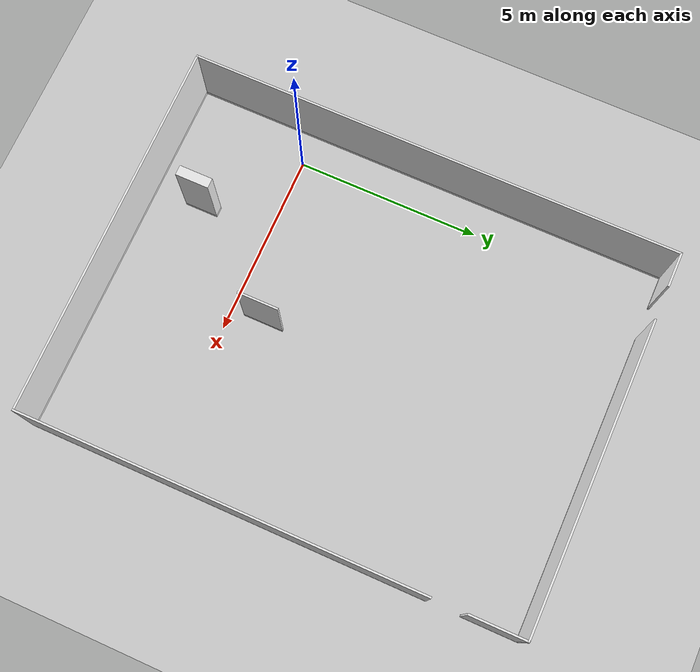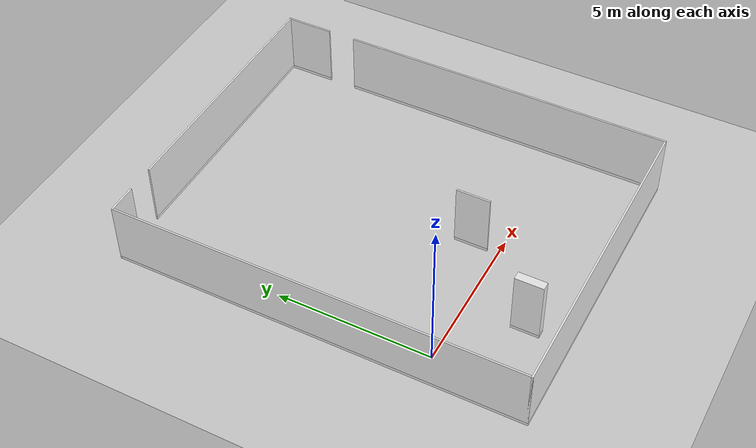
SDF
<sdf version="1.6">
 <world name="default">
  <physics name="default_physics" default="0" type="ode">
   <max_step_size>0.001</max_step_size>
   <real_time_factor>1</real_time_factor>
   <real_time_update_rate>1000</real_time_update_rate>
  </physics>
  <light name="sun" type="directional">
   <pose>0 0 10 0 -0 0</pose>
   <diffuse>0.8 0.8 0.8 1</diffuse>
   <specular>0.1 0.1 0.1 1</specular>
   <attenuation>
    <range>1000</range>
    <constant>0.9</constant>
    <linear>0.01</linear>
    <quadratic>0.001</quadratic>
   </attenuation>
   <direction>-0.5 0.5 -1</direction>
  </light>
  <model name="ground_plane">
   <static>1</static>
   <link name="link">
    <collision name="collision">
     <geometry><plane><normal>0 0 1</normal><size>100 100</size></plane></geometry>
     <surface><friction><ode><mu>100</mu><mu2>50</mu2></ode></friction></surface>
    </collision>
    <visual name="visual">
     <cast_shadows>0</cast_shadows>
     <geometry><plane><normal>0 0 1</normal><size>100 100</size></plane></geometry>
     <material>
      <script><uri>file://media/materials/scripts/gazebo.material</uri><name>Gazebo/Grey</name></script>
     </material>
    </visual>
   </link>
  </model>
  <gravity>0 0 -9.8</gravity>
  <magnetic_field>6e-06 2.3e-05 -4.2e-05</magnetic_field>
  <atmosphere type="adiabatic"/>
  <scene><ambient>0.4 0.4 0.4 1</ambient><background>0.7 0.7 0.7 1</background><shadows>1</shadows></scene>
  <spherical_coordinates>
   <surface_model>EARTH_WGS84</surface_model>
   <latitude_deg>0</latitude_deg>
   <longitude_deg>0</longitude_deg>
   <elevation>0</elevation>
   <heading_deg>0</heading_deg>
  </spherical_coordinates>
  <model name="full_wall_270_900_2090">
   <link name="link">
    <inertial>
     <mass>50</mass>
     <inertia><ixx>1</ixx><ixy>0</ixy><ixz>0</ixz><iyy>1</iyy><iyz>0</iyz><izz>1</izz></inertia>
    </inertial>
    <visual name="bottom_frame">
     <pose>0 0 0.05 0 -0 0</pose>
     <geometry><box><size>0.27 0.9 0.1</size></box></geometry>
     <material>
      <script><uri>model://base_materials/color/scripts</uri><name>hsr_color/white</name></script>
     </material>
    </visual>
    <collision name="collision_bottom_frame">
     <pose>0 0 0.05 0 -0 0</pose>
     <geometry><box><size>0.27 0.9 0.1</size></box></geometry>
    </collision>
    <visual name="wall">
     <pose>0 0 1.095 0 -0 0</pose>
     <geometry><box><size>0.27 0.9 1.99</size></box></geometry>
     <material>
      <script>
       <uri>model://base_materials/wall/scripts</uri>
       <uri>model://base_materials/wall/textures</uri>
       <name>wall/white_noise</name>
      </script>
     </material>
    </visual>
    <collision name="collision_wall">
     <pose>0 0 1.095 0 -0 0</pose>
     <geometry><box><size>0.27 0.9 1.99</size></box></geometry>
    </collision>
    <velocity_decay><linear>0</linear><angular>0</angular></velocity_decay>
   </link>
   <static>1</static>
   <pose>2.16584 -1.92723 0 0 -0 0</pose>
  </model>
  <model name="full_wall_55_1100_2090">
   <link name="link">
    <inertial>
     <mass>50</mass>
     <inertia><ixx>1</ixx><ixy>0</ixy><ixz>0</ixz><iyy>1</iyy><iyz>0</iyz><izz>1</izz></inertia>
    </inertial>
    <visual name="bottom_frame">
     <pose>0 0 0.05 0 -0 0</pose>
     <geometry><box><size>0.055 1.1 0.1</size></box></geometry>
     <material>
      <script><uri>model://base_materials/color/scripts</uri><name>hsr_color/white</name></script>
     </material>
    </visual>
    <collision name="collision_bottom_frame">
     <pose>0 0 0.05 0 -0 0</pose>
     <geometry><box><size>0.055 1.1 0.1</size></box></geometry>
    </collision>
    <visual name="wall">
     <pose>0 0 1.095 0 -0 0</pose>
     <geometry><box><size>0.055 1.1 1.99</size></box></geometry>
     <material>
      <script>
       <uri>model://base_materials/wall/scripts</uri>
       <uri>model://base_materials/wall/textures</uri>
       <name>wall/white_noise</name>
      </script>
     </material>
    </visual>
    <collision name="collision_wall">
     <pose>0 0 1.095 0 -0 0</pose>
     <geometry><box><size>0.055 1.1 1.99</size></box></geometry>
    </collision>
    <velocity_decay><linear>0</linear><angular>0</angular></velocity_decay>
   </link>
   <static>1</static>
   <pose>4.44537 0.898241 0 0 -0 0</pose>
  </model>
  <model name="full_outside_wall">
   <link name="link">
    <inertial>
     <mass>50</mass>
     <inertia><ixx>1</ixx><ixy>0</ixy><ixz>0</ixz><iyy>1</iyy><iyz>0</iyz><izz>1</izz></inertia>
    </inertial>
    <visual name="x00_13y00_bottom_frame">
     <pose>5.0375 -0.0275 0.05 0 -0 0</pose>
     <geometry><box><size>10.185 0.055 0.1</size></box></geometry>
     <material>
      <script><uri>model://base_materials/color/scripts</uri><name>hsr_color/white</name></script>
     </material>
    </visual>
    <collision name="x00_13y00_collision_bottom_frame">
     <pose>5.0375 -0.0275 0.05 0 -0 0</pose>
     <geometry><box><size>10.185 0.055 0.1</size></box></geometry>
    </collision>
    <visual name="wall_x00_13y00">
     <pose>5.0375 -0.0275 1.095 0 -0 0</pose>
     <geometry><box><size>10.185 0.055 1.99</size></box></geometry>
     <material>
      <script>
       <uri>model://base_materials/wall/scripts</uri>
       <uri>model://base_materials/wall/textures</uri>
       <name>wall/white_noise</name>
      </script>
     </material>
    </visual>
    <collision name="wall_x00_13y00">
     <pose>5.0375 -0.002 1.095 0 -0 0</pose>
     <geometry><box><size>10.08 0.055 1.99</size></box></geometry>
    </collision>
    <visual name="x00y00_15_bottom_frame">
     <pose>-0.0275 6.59 0.05 0 -0 0</pose>
     <geometry><box><size>0.055 13.29 0.1</size></box></geometry>
     <material>
      <script><uri>model://base_materials/color/scripts</uri><name>hsr_color/white</name></script>
     </material>
    </visual>
    <collision name="x00y00_15_collision_bottom_frame">
     <pose>-0.0275 6.59 0.05 0 -0 0</pose>
     <geometry><box><size>0.055 13.29 0.1</size></box></geometry>
    </collision>
    <visual name="wall_x00y00_15">
     <pose>-0.0275 6.59 1.095 0 -0 0</pose>
     <geometry><box><size>0.055 13.29 1.99</size></box></geometry>
     <material>
      <script>
       <uri>model://base_materials/wall/scripts</uri>
       <uri>model://base_materials/wall/textures</uri>
       <name>wall/white_noise</name>
      </script>
     </material>
    </visual>
    <collision name="wall_x00y00_x00y15">
     <pose>-0.002 6.59 1.095 0 -0 0</pose>
     <geometry><box><size>0.002 13.29 1.99</size></box></geometry>
    </collision>
    <visual name="x13y00_12_bottom_frame">
     <pose>10.1025 5.3725 0.05 0 -0 0</pose>
     <geometry><box><size>0.055 10.855 0.1</size></box></geometry>
     <material>
      <script><uri>model://base_materials/color/scripts</uri><name>hsr_color/white</name></script>
     </material>
    </visual>
    <collision name="x13y00_12_collision_bottom_frame">
     <pose>10.1025 5.3725 0.05 0 -0 0</pose>
     <geometry><box><size>0.055 10.855 0.1</size></box></geometry>
    </collision>
    <visual name="wall_x13y00_12">
     <pose>10.1025 5.3725 1.095 0 -0 0</pose>
     <geometry><box><size>0.055 10.855 1.99</size></box></geometry>
     <material>
      <script>
       <uri>model://base_materials/wall/scripts</uri>
       <uri>model://base_materials/wall/textures</uri>
       <name>wall/white_noise</name>
      </script>
     </material>
    </visual>
    <collision name="wall_x13y00_12">
     <pose>10.1025 5.3725 1.095 0 -0 0</pose>
     <geometry><box><size>0.055 10.855 1.99</size></box></geometry>
    </collision>
    <visual name="x13y14_16_bottom_frame">
     <pose>10.1025 12.4675 0.05 0 -0 0</pose>
     <geometry><box><size>0.055 1.535 0.1</size></box></geometry>
     <material>
      <script><uri>model://base_materials/color/scripts</uri><name>hsr_color/white</name></script>
     </material>
    </visual>
    <collision name="x13y14_16_collision_bottom_frame">
     <pose>10.1025 12.4675 0.05 0 -0 0</pose>
     <geometry><box><size>0.055 1.535 0.1</size></box></geometry>
    </collision>
    <visual name="wall_x13y14_x13y16">
     <pose>10.1025 12.4675 1.095 0 -0 0</pose>
     <geometry><box><size>0.055 1.535 1.99</size></box></geometry>
     <material>
      <script>
       <uri>model://base_materials/wall/scripts</uri>
       <uri>model://base_materials/wall/textures</uri>
       <name>wall/white_noise</name>
      </script>
     </material>
    </visual>
    <collision name="wall_x13y14_x13y16">
     <pose>10.1025 12.4675 1.095 0 -0 0</pose>
     <geometry><box><size>0.055 1.535 1.99</size></box></geometry>
    </collision>
    <visual name="x00_01y16_bottom_frame">
     <pose>0.4225 13.2075 0.05 0 -0 0</pose>
     <geometry><box><size>0.955 0.055 0.1</size></box></geometry>
     <material>
      <script><uri>model://base_materials/color/scripts</uri><name>hsr_color/white</name></script>
     </material>
    </visual>
    <collision name="x00_01y16_collision_bottom_frame">
     <pose>0.4225 13.2075 0.05 0 -0 0</pose>
     <geometry><box><size>0.955 0.055 0.1</size></box></geometry>
    </collision>
    <visual name="wall_x00_01y16">
     <pose>0.4225 13.2075 1.095 0 -0 0</pose>
     <geometry><box><size>0.955 0.055 1.99</size></box></geometry>
     <material>
      <script>
       <uri>model://base_materials/wall/scripts</uri>
       <uri>model://base_materials/wall/textures</uri>
       <name>wall/white_noise</name>
      </script>
     </material>
    </visual>
    <collision name="wall_x00_x01y16">
     <pose>0.4225 13.2075 1.095 0 -0 0</pose>
     <geometry><box><size>0.955 0.055 1.99</size></box></geometry>
    </collision>
    <visual name="x03_13y16_bottom_frame">
     <pose>5.965 13.2075 0.05 0 -0 0</pose>
     <geometry><box><size>8.33 0.05 0.1</size></box></geometry>
     <material>
      <script><uri>model://base_materials/color/scripts</uri><name>hsr_color/white</name></script>
     </material>
    </visual>
    <collision name="x03_13y16_collision_bottom_frame">
     <pose>5.965 13.2075 0.05 0 -0 0</pose>
     <geometry><box><size>8.33 0.05 0.1</size></box></geometry>
    </collision>
    <visual name="wall_x03_13y16">
     <pose>5.965 13.2075 1.095 0 -0 0</pose>
     <geometry><box><size>8.33 0.055 1.99</size></box></geometry>
     <material>
      <script>
       <uri>model://base_materials/wall/scripts</uri>
       <uri>model://base_materials/wall/textures</uri>
       <name>wall/white_noise</name>
      </script>
     </material>
    </visual>
    <collision name="wall_x03_13y16">
     <pose>5.965 13.2075 1.095 0 -0 0</pose>
     <geometry><box><size>8.33 0.055 1.99</size></box></geometry>
    </collision>
    <velocity_decay><linear>0</linear><angular>0</angular></velocity_decay>
   </link>
   <static>1</static>
   <pose>-0.839652 -3.26182 0 0 -0 0</pose>
  </model>
 </world>
</sdf>
